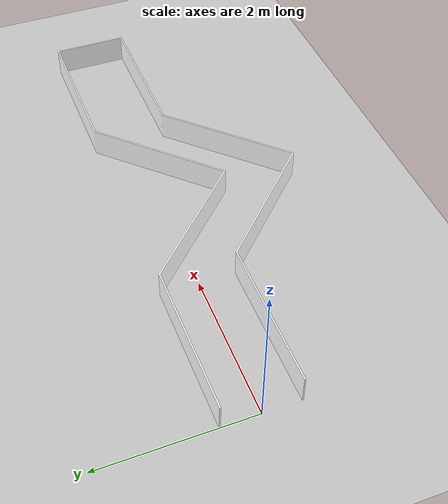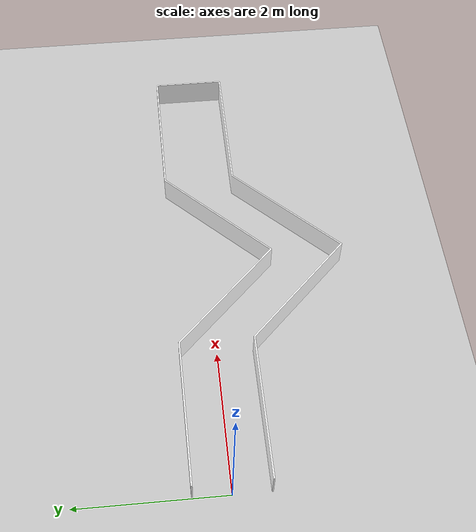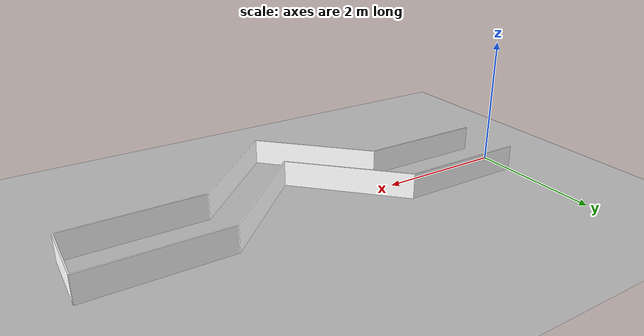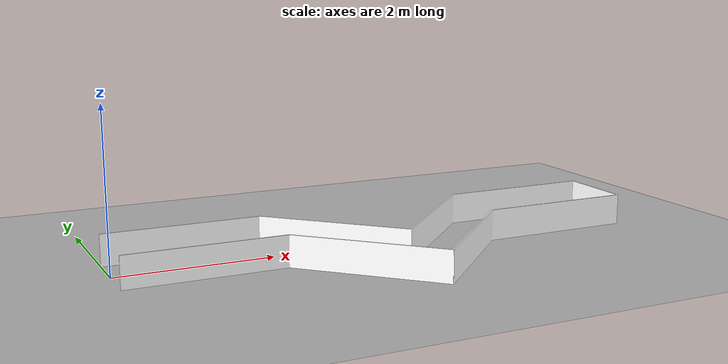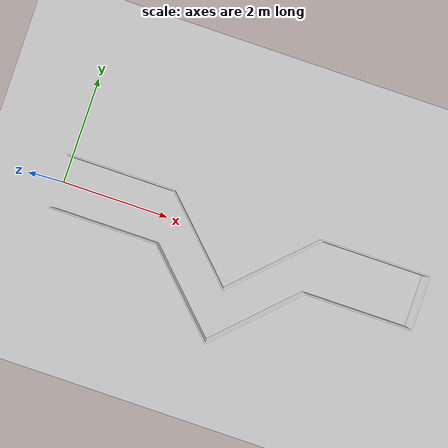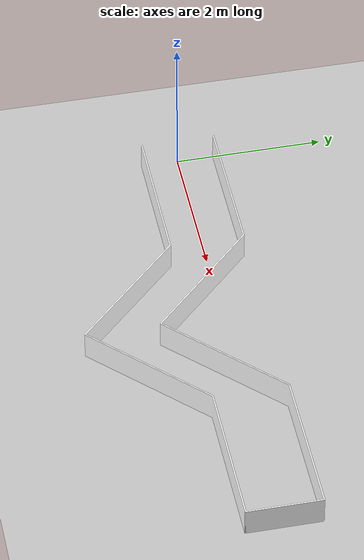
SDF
<?xml version="1.0"?>
<sdf version="1.6">
  <world name="default">

    <include>
      <uri>model://ground_plane</uri>
    </include>

    <include>
      <uri>model://sun</uri>
    </include>

    <scene>
      <shadows>false</shadows>
    </scene>

    <gui fullscreen='0'>
      <camera name='user_camera'>
        <pose frame=''>0.319654 -0.235002 9.29441 0 1.5138 0.009599</pose>
        <view_controller>orbit</view_controller>
        <projection_type>perspective</projection_type>
      </camera>
    </gui>

    <physics type="ode">
      <real_time_update_rate>1000.0</real_time_update_rate>
      <max_step_size>0.001</max_step_size>
      <real_time_factor>1</real_time_factor>
      <ode>
        <solver>
          <type>quick</type>
          <iters>150</iters>
          <precon_iters>0</precon_iters>
          <sor>1.400000</sor>
          <use_dynamic_moi_rescaling>1</use_dynamic_moi_rescaling>
        </solver>
        <constraints>
          <cfm>0.00001</cfm>
          <erp>0.2</erp>
          <contact_max_correcting_vel>2000.000000</contact_max_correcting_vel>
          <contact_surface_layer>0.01000</contact_surface_layer>
        </constraints>
      </ode>
    </physics>

    <model name="turtlebot2_obstacle_simple">
      <static>1</static>
      <include>
        <uri>model://turtlebot2_obstaclecourse_simple</uri>
      </include>
    </model>

  </world>
</sdf>

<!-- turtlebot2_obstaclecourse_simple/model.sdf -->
<sdf version="1.8">
  <model name="test">
    <link name="testlink">
      <visual name="Cube">
        <geometry>
          <mesh>
            <uri>model://turtlebot2_obstaclecourse_simple/meshes/model.dae</uri>
            <submesh>
              <name>Cube</name>
            </submesh>
          </mesh>
        </geometry>
        <material>
          <diffuse>1.0 1.0 1.0 1.0</diffuse>
          <specular>0.0 0.0 0.0 1.0</specular>
          <pbr>
            <metal/>
          </pbr>
        </material>
      </visual>
      <visual name="Cube.001">
        <geometry>
          <mesh>
            <uri>model://turtlebot2_obstaclecourse_simple/meshes/model.dae</uri>
            <submesh>
              <name>Cube.001</name>
            </submesh>
          </mesh>
        </geometry>
        <material>
          <diffuse>1.0 1.0 1.0 1.0</diffuse>
          <specular>0.0 0.0 0.0 1.0</specular>
          <pbr>
            <metal/>
          </pbr>
        </material>
      </visual>
      <visual name="Cube.002">
        <geometry>
          <mesh>
            <uri>model://turtlebot2_obstaclecourse_simple/meshes/model.dae</uri>
            <submesh>
              <name>Cube.002</name>
            </submesh>
          </mesh>
        </geometry>
        <material>
          <diffuse>1.0 1.0 1.0 1.0</diffuse>
          <specular>0.0 0.0 0.0 1.0</specular>
          <pbr>
            <metal/>
          </pbr>
        </material>
      </visual>
      <visual name="Cube.003">
        <geometry>
          <mesh>
            <uri>model://turtlebot2_obstaclecourse_simple/meshes/model.dae</uri>
            <submesh>
              <name>Cube.003</name>
            </submesh>
          </mesh>
        </geometry>
        <material>
          <diffuse>1.0 1.0 1.0 1.0</diffuse>
          <specular>0.0 0.0 0.0 1.0</specular>
          <pbr>
            <metal/>
          </pbr>
        </material>
      </visual>
      <visual name="Cube.004">
        <geometry>
          <mesh>
            <uri>model://turtlebot2_obstaclecourse_simple/meshes/model.dae</uri>
            <submesh>
              <name>Cube.004</name>
            </submesh>
          </mesh>
        </geometry>
        <material>
          <diffuse>1.0 1.0 1.0 1.0</diffuse>
          <specular>0.0 0.0 0.0 1.0</specular>
          <pbr>
            <metal/>
          </pbr>
        </material>
      </visual>
      <visual name="Cube.005">
        <geometry>
          <mesh>
            <uri>model://turtlebot2_obstaclecourse_simple/meshes/model.dae</uri>
            <submesh>
              <name>Cube.005</name>
            </submesh>
          </mesh>
        </geometry>
        <material>
          <diffuse>1.0 1.0 1.0 1.0</diffuse>
          <specular>0.0 0.0 0.0 1.0</specular>
          <pbr>
            <metal/>
          </pbr>
        </material>
      </visual>
      <visual name="Cube.006">
        <geometry>
          <mesh>
            <uri>model://turtlebot2_obstaclecourse_simple/meshes/model.dae</uri>
            <submesh>
              <name>Cube.006</name>
            </submesh>
          </mesh>
        </geometry>
        <material>
          <diffuse>1.0 1.0 1.0 1.0</diffuse>
          <specular>0.0 0.0 0.0 1.0</specular>
          <pbr>
            <metal/>
          </pbr>
        </material>
      </visual>
      <visual name="Cube.007">
        <geometry>
          <mesh>
            <uri>model://turtlebot2_obstaclecourse_simple/meshes/model.dae</uri>
            <submesh>
              <name>Cube.007</name>
            </submesh>
          </mesh>
        </geometry>
        <material>
          <diffuse>1.0 1.0 1.0 1.0</diffuse>
          <specular>0.0 0.0 0.0 1.0</specular>
          <pbr>
            <metal/>
          </pbr>
        </material>
      </visual>
      <visual name="Cube.008">
        <geometry>
          <mesh>
            <uri>model://turtlebot2_obstaclecourse_simple/meshes/model.dae</uri>
            <submesh>
              <name>Cube.008</name>
            </submesh>
          </mesh>
        </geometry>
        <material>
          <diffuse>1.0 1.0 1.0 1.0</diffuse>
          <specular>0.0 0.0 0.0 1.0</specular>
          <pbr>
            <metal/>
          </pbr>
        </material>
      </visual>
      <visual name="Cube.009">
        <geometry>
          <mesh>
            <uri>model://turtlebot2_obstaclecourse_simple/meshes/model.dae</uri>
            <submesh>
              <name>Cube.009</name>
            </submesh>
          </mesh>
        </geometry>
        <material>
          <diffuse>1.0 1.0 1.0 1.0</diffuse>
          <specular>0.0 0.0 0.0 1.0</specular>
          <pbr>
            <metal/>
          </pbr>
        </material>
      </visual>
      <visual name="Cube.010">
        <geometry>
          <mesh>
            <uri>model://turtlebot2_obstaclecourse_simple/meshes/model.dae</uri>
            <submesh>
              <name>Cube.010</name>
            </submesh>
          </mesh>
        </geometry>
        <material>
          <diffuse>1.0 1.0 1.0 1.0</diffuse>
          <specular>0.0 0.0 0.0 1.0</specular>
          <pbr>
            <metal/>
          </pbr>
        </material>
      </visual>
      <visual name="Cube.011">
        <geometry>
          <mesh>
            <uri>model://turtlebot2_obstaclecourse_simple/meshes/model.dae</uri>
            <submesh>
              <name>Cube.011</name>
            </submesh>
          </mesh>
        </geometry>
        <material>
          <diffuse>1.0 1.0 1.0 1.0</diffuse>
          <specular>0.0 0.0 0.0 1.0</specular>
          <pbr>
            <metal/>
          </pbr>
        </material>
      </visual>
      <visual name="Cube.012">
        <geometry>
          <mesh>
            <uri>model://turtlebot2_obstaclecourse_simple/meshes/model.dae</uri>
            <submesh>
              <name>Cube.012</name>
            </submesh>
          </mesh>
        </geometry>
        <material>
          <diffuse>1.0 1.0 1.0 1.0</diffuse>
          <specular>0.0 0.0 0.0 1.0</specular>
          <pbr>
            <metal/>
          </pbr>
        </material>
      </visual>
      <visual name="Cube.013">
        <geometry>
          <mesh>
            <uri>model://turtlebot2_obstaclecourse_simple/meshes/model.dae</uri>
            <submesh>s
              <name>Cube.013</name>
            </submesh>
          </mesh>
        </geometry>
        <material>
          <diffuse>1.0 1.0 1.0 1.0</diffuse>
          <specular>0.0 0.0 0.0 1.0</specular>
          <pbr>
            <metal/>
          </pbr>
        </material>
      </visual>
      <visual name="Cube.014">
        <geometry>
          <mesh>
            <uri>model://turtlebot2_obstaclecourse_simple/meshes/model.dae</uri>
            <submesh>
              <name>Cube.014</name>
            </submesh>
          </mesh>
        </geometry>
        <material>
          <diffuse>1.0 1.0 1.0 1.0</diffuse>
          <specular>0.0 0.0 0.0 1.0</specular>
          <pbr>
            <metal/>
          </pbr>
        </material>
      </visual>
      <visual name="Cube.015">
        <geometry>
          <mesh>
            <uri>model://turtlebot2_obstaclecourse_simple/meshes/model.dae</uri>
            <submesh>
              <name>Cube.015</name>
            </submesh>
          </mesh>
        </geometry>
        <material>
          <diffuse>1.0 1.0 1.0 1.0</diffuse>
          <specular>0.0 0.0 0.0 1.0</specular>
          <pbr>
            <metal/>
          </pbr>
        </material>
      </visual>
      <visual name="Cube.016">
        <geometry>
          <mesh>
            <uri>model://turtlebot2_obstaclecourse_simple/meshes/model.dae</uri>
            <submesh>
              <name>Cube.016</name>
            </submesh>
          </mesh>
        </geometry>
        <material>
          <diffuse>1.0 1.0 1.0 1.0</diffuse>
          <specular>0.0 0.0 0.0 1.0</specular>
          <pbr>
            <metal/>
          </pbr>
        </material>
      </visual>
      <collision name="collision">
        <geometry>
          <mesh>
            <uri>model://turtlebot2_obstaclecourse_simple/meshes/model.dae</uri>
          </mesh>
        </geometry>
        <surface/>
        <contact/>
        <collide_bitmask>0x01</collide_bitmask>
      </collision>
    </link>
  </model>
  <static>true</static>
</sdf>
